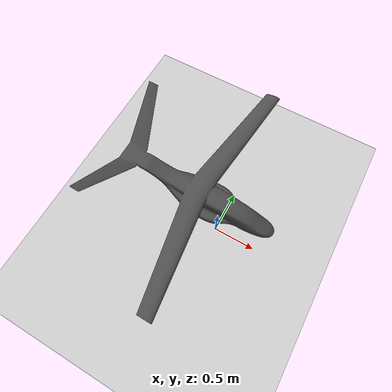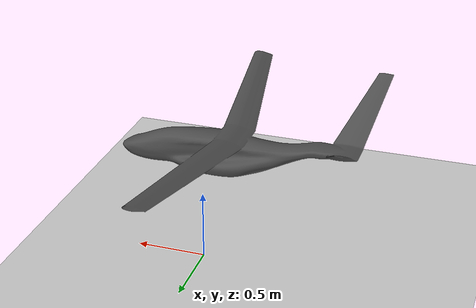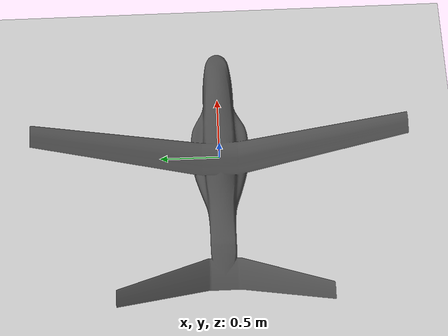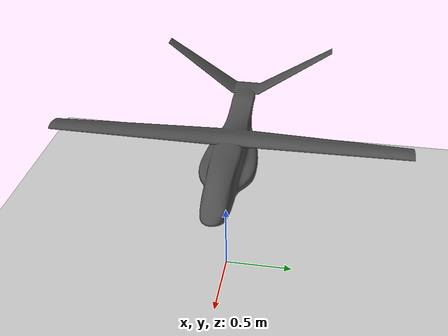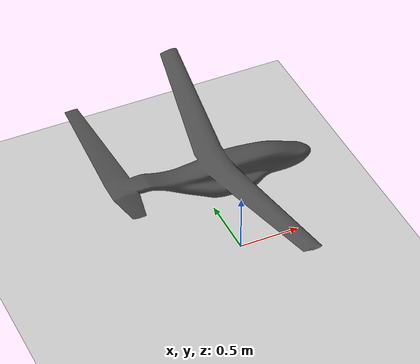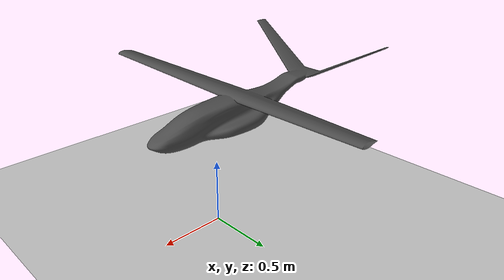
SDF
<?xml version="1.0" ?>
<sdf version="1.5">
  <world name="default">
    <!-- A global light source -->
    <include>
      <uri>model://sun</uri>
    </include>
    <!-- A ground plane -->
    <include>
      <uri>model://ground_plane</uri>
    </include>
    <!-- An asphalt plane -->
    <include>
      <uri>model://tiltrotor_birotor</uri>
      <pose>0 0 0.83 0 0 0</pose>
    </include>
    <physics name='default_physics' default='0' type='ode'>
      <gravity>0 0 -9.8066</gravity>
      <ode>
        <solver>
          <type>quick</type>
          <iters>10</iters>
          <sor>1.3</sor>
          <use_dynamic_moi_rescaling>0</use_dynamic_moi_rescaling>
        </solver>
        <constraints>
          <cfm>0</cfm>
          <erp>0.2</erp>
          <contact_max_correcting_vel>100</contact_max_correcting_vel>
          <contact_surface_layer>0.001</contact_surface_layer>
        </constraints>
      </ode>
      <max_step_size>0.004</max_step_size>
      <real_time_factor>1</real_time_factor>
      <real_time_update_rate>250</real_time_update_rate>
      <magnetic_field>6.0e-6 2.3e-5 -4.2e-5</magnetic_field>
    </physics>
    <gui fullscreen='0'>
      <camera name='user_camera'>
        <pose>-10 0 6 0 0.3 0</pose>
      </camera>
    </gui>
  </world>
</sdf>

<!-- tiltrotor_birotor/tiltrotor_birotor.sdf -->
<sdf version='1.6'>
  <model name='tiltrotor_birotor'>
    <link name='base_link'>
      <pose frame=''>0 0 0 0 -0 0</pose>
      <inertial>
        <pose frame=''>0 0 0 0 0 0</pose>
        <mass>1</mass>
        <inertia>
          <ixx>0.03</ixx>
          <ixy>0</ixy>
          <ixz>0</ixz>
          <iyy>0.04</iyy>
          <iyz>0</iyz>
          <izz>0.09</izz>
        </inertia>
      </inertial>
      <collision name='base_link_inertia_collision'>
        <pose frame=''>0 0 0 0 -0 0</pose>
        <geometry>
          <box>
            <size>1 1.29 0.4</size>
          </box>
        </geometry>
        <surface>
          <contact>
            <ode>
              <min_depth>0.001</min_depth>
              <max_vel>0</max_vel>
            </ode>
          </contact>
          <friction>
            <ode>
               <mu>0.8</mu>
               <mu2>0.8</mu2>
            </ode>
          </friction>
        </surface>
      </collision>
      <visual name='base_link_inertia_visual'>
        <plugin name="visual_plugin" filename="libvisual_plugin.so"/>
        <pose frame=''>0.60 0 0 0 -0 3.14</pose>
        <geometry>
          <mesh>
            <scale>0.001 0.001 0.001</scale>
            <uri>model://tiltrotor_birotor/tilt-rotor.stl</uri>
          </mesh>
        </geometry>
        <material>
          <script>
            <name>Gazebo/DarkGrey</name>
            <uri>file://media/materials/scripts/gazebo.material</uri>
          </script>
        </material>
      </visual>
      <gravity>1</gravity>
    </link>
    <link name='/imu_link'>
      <pose frame=''>0 0 0 0 -0 0</pose>
      <inertial>
        <pose frame=''>0 0 0 0 -0 0</pose>
        <mass>0.015</mass>
        <inertia>
          <ixx>1e-05</ixx>
          <ixy>0</ixy>
          <ixz>0</ixz>
          <iyy>1e-05</iyy>
          <iyz>0</iyz>
          <izz>1e-05</izz>
        </inertia>
      </inertial>
    </link>
    <joint name='/imu_joint' type='revolute'>
      <child>/imu_link</child>
      <parent>base_link</parent>
      <axis>
        <xyz>1 0 0</xyz>
        <limit>
          <lower>0</lower>
          <upper>0</upper>
          <effort>0</effort>
          <velocity>0</velocity>
        </limit>
        <dynamics>
          <spring_reference>0</spring_reference>
          <spring_stiffness>0</spring_stiffness>
        </dynamics>
        <use_parent_model_frame>1</use_parent_model_frame>
      </axis>
    </joint>

    <plugin name='mavlink_interface' filename='libgazebo_mavlink_interface.so'>
      <robotNamespace/>
      <imuSubTopic>/imu</imuSubTopic>
      <gpsSubTopic>/gps</gpsSubTopic>
      <magSubTopic>/mag</magSubTopic>
      <baroSubTopic>/baro</baroSubTopic>
      <mavlink_addr>INADDR_ANY</mavlink_addr>
      <mavlink_udp_port>14560</mavlink_udp_port>
      <mavlink_tcp_port>4560</mavlink_tcp_port>
      <serialEnabled>0</serialEnabled>
      <serialDevice>/dev/ttyACM0</serialDevice>
      <baudRate>921600</baudRate>
      <qgc_addr>INADDR_ANY</qgc_addr>
      <qgc_udp_port>14550</qgc_udp_port>
      <sdk_addr>INADDR_ANY</sdk_addr>
      <sdk_udp_port>14540</sdk_udp_port>
      <hil_mode>0</hil_mode>
      <hil_state_level>0</hil_state_level>
      <vehicle_is_tailsitter>0</vehicle_is_tailsitter>
      <send_vision_estimation>1</send_vision_estimation>
      <send_odometry>0</send_odometry>
      <enable_lockstep>1</enable_lockstep>
      <use_tcp>1</use_tcp>
      <motorSpeedCommandPubTopic>/gazebo/command/motor_speed</motorSpeedCommandPubTopic>
      <control_channels>
        <channel name='rotor0'>
          <input_index>0</input_index>
          <input_offset>0</input_offset>
          <input_scaling>1</input_scaling>
          <zero_position_disarmed>0</zero_position_disarmed>
          <zero_position_armed>0</zero_position_armed>
          <joint_control_type>velocity</joint_control_type>
        </channel>
        <channel name='rotor1'>
          <input_index>1</input_index>
          <input_offset>0</input_offset>
          <input_scaling>1</input_scaling>
          <zero_position_disarmed>0</zero_position_disarmed>
          <zero_position_armed>0</zero_position_armed>
          <joint_control_type>velocity</joint_control_type>
        </channel>

        <channel name="motor0_tilt">
          <input_index>2</input_index>
          <input_offset>0</input_offset>
          <input_scaling>1</input_scaling>
          <zero_position_disarmed>0</zero_position_disarmed>
          <zero_position_armed>0</zero_position_armed>
          <joint_control_type>position_kinematic</joint_control_type>
          <joint_name>motor_0_joint</joint_name>
           <joint_control_pid>
            <p>10</p>
            <i>1</i>
            <d>0.005</d>
            <iMax>0.0</iMax>
            <iMin>1.0</iMin>
            <cmdMax> 1.5700</cmdMax>
            <cmdMin>-1.5700</cmdMin>
          </joint_control_pid>
        </channel>
        <channel name="motor1_tilt">
          <input_index>3</input_index>
          <input_offset>0</input_offset>
          <input_scaling>1</input_scaling>
          <zero_position_disarmed>0</zero_position_disarmed>
          <zero_position_armed>0</zero_position_armed>
          <joint_control_type>position_kinematic</joint_control_type>
          <joint_name>motor_1_joint</joint_name>
           <joint_control_pid>
            <p>10</p>
            <i>1</i>
            <d>0.005</d>
            <iMax>1.0</iMax>
            <iMin>0.0</iMin>
            <cmdMax>1.5700</cmdMax>
            <cmdMin>-1.5700</cmdMin>
          </joint_control_pid>
        </channel>
      </control_channels>
    </plugin>
    <static>0</static>
    <plugin name='rotors_gazebo_imu_plugin' filename='libgazebo_imu_plugin.so'>
      <robotNamespace/>
      <linkName>/imu_link</linkName>
      <imuTopic>/imu</imuTopic>
      <gyroscopeNoiseDensity>0.0003394</gyroscopeNoiseDensity>
      <gyroscopeRandomWalk>3.8785e-05</gyroscopeRandomWalk>
      <gyroscopeBiasCorrelationTime>1000.0</gyroscopeBiasCorrelationTime>
      <gyroscopeTurnOnBiasSigma>0.0087</gyroscopeTurnOnBiasSigma>
      <accelerometerNoiseDensity>0.004</accelerometerNoiseDensity>
      <accelerometerRandomWalk>0.006</accelerometerRandomWalk>
      <accelerometerBiasCorrelationTime>300.0</accelerometerBiasCorrelationTime>
      <accelerometerTurnOnBiasSigma>0.196</accelerometerTurnOnBiasSigma>
    </plugin>
    <plugin name='gps_plugin' filename='libgazebo_gps_plugin.so'>
      <robotNamespace/>
      <gpsNoise>1</gpsNoise>
    </plugin>
    <plugin name='magnetometer_plugin' filename='libgazebo_magnetometer_plugin.so'>
      <robotNamespace/>
      <pubRate>20</pubRate>
      <noiseDensity>0.0004</noiseDensity>
      <randomWalk>6.4e-06</randomWalk>
      <biasCorrelationTime>600</biasCorrelationTime>
      <magTopic>/mag</magTopic>
    </plugin>
    <plugin name='barometer_plugin' filename='libgazebo_barometer_plugin.so'>
      <robotNamespace/>
      <pubRate>10</pubRate>
      <baroTopic>/baro</baroTopic>
    </plugin>
  </model>
</sdf>
